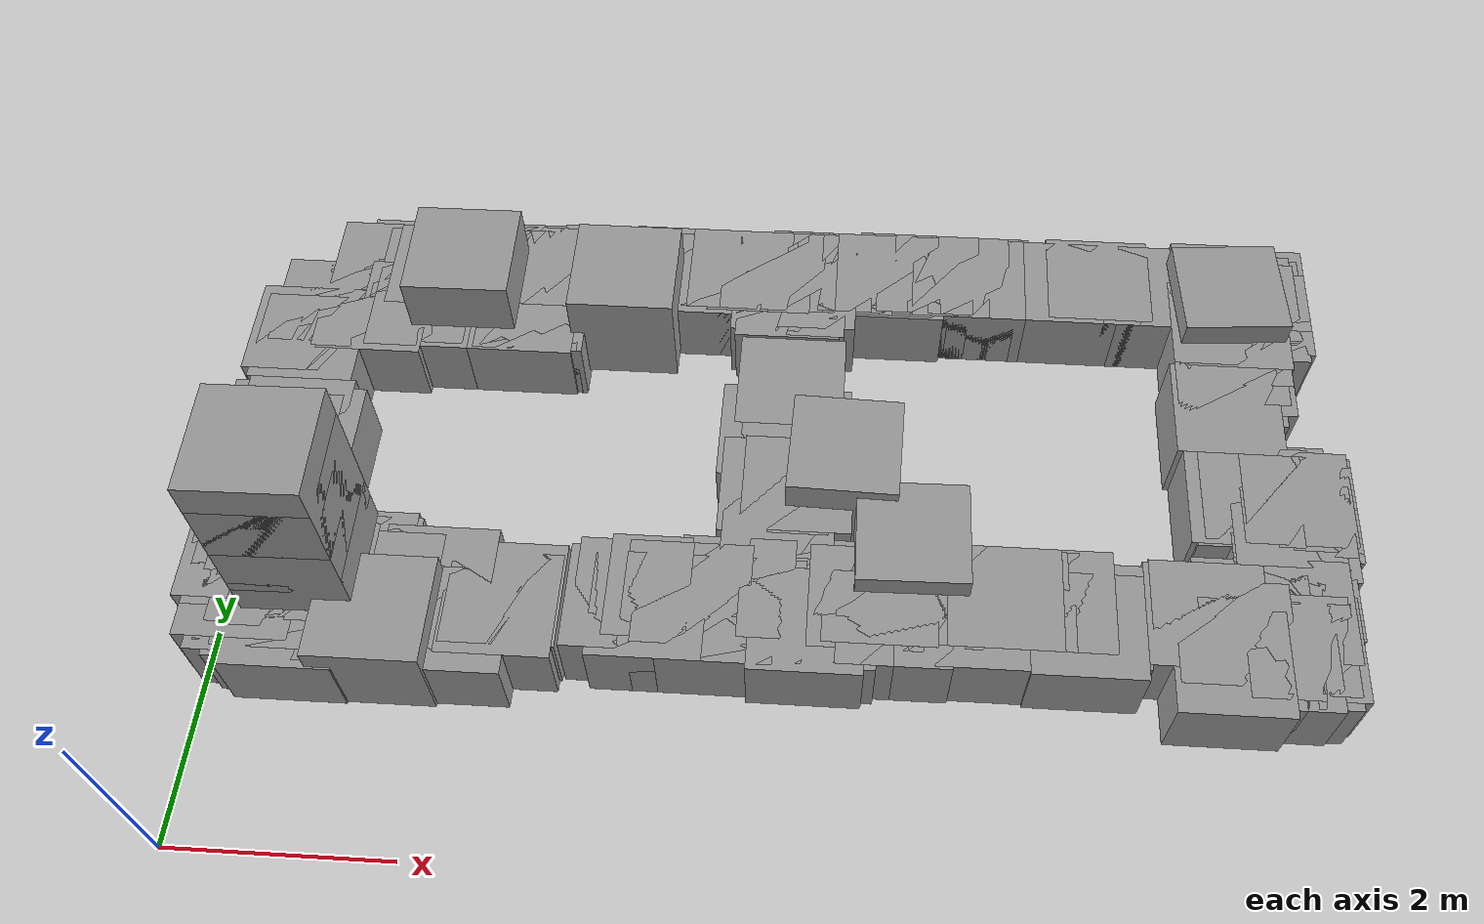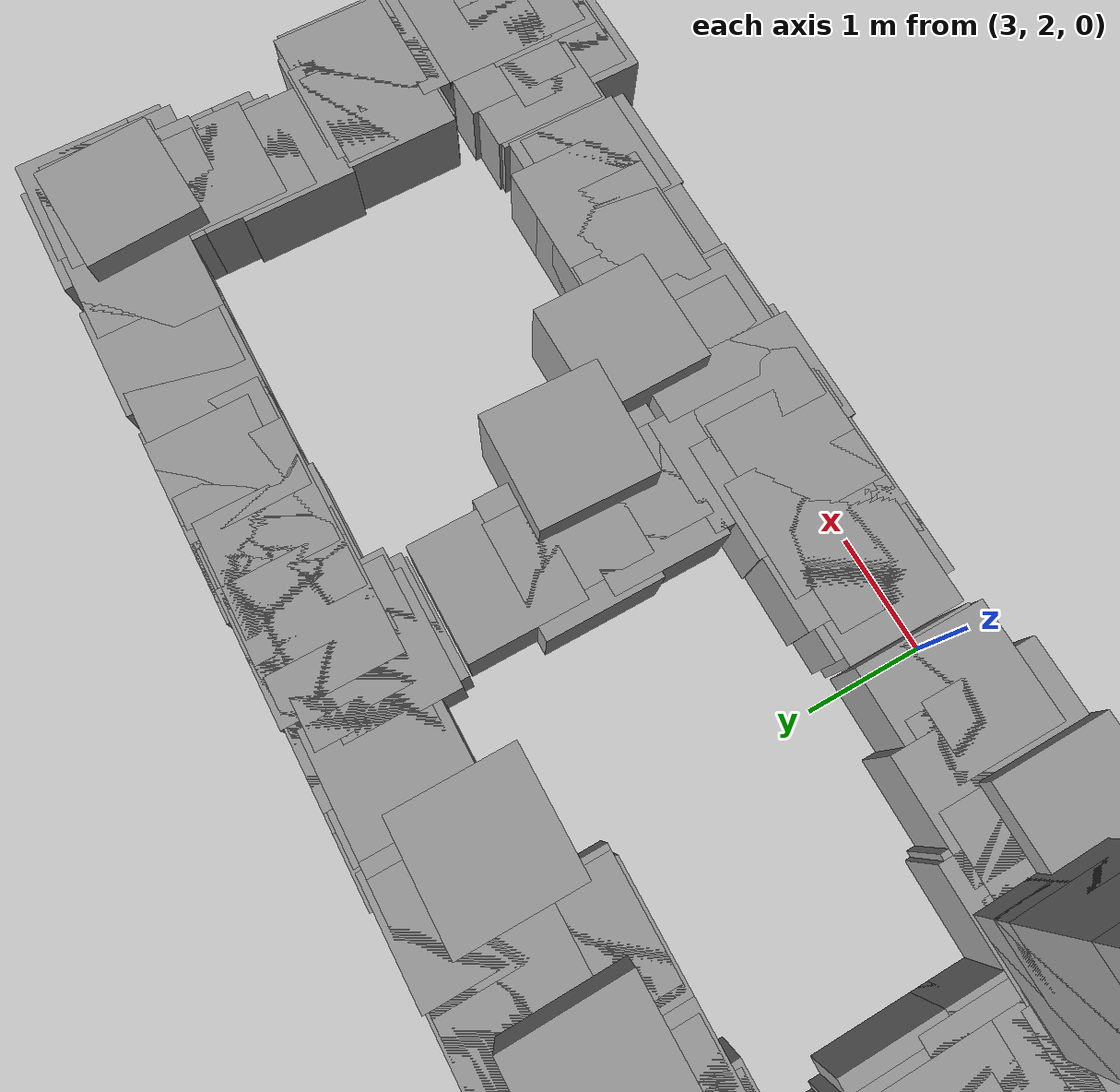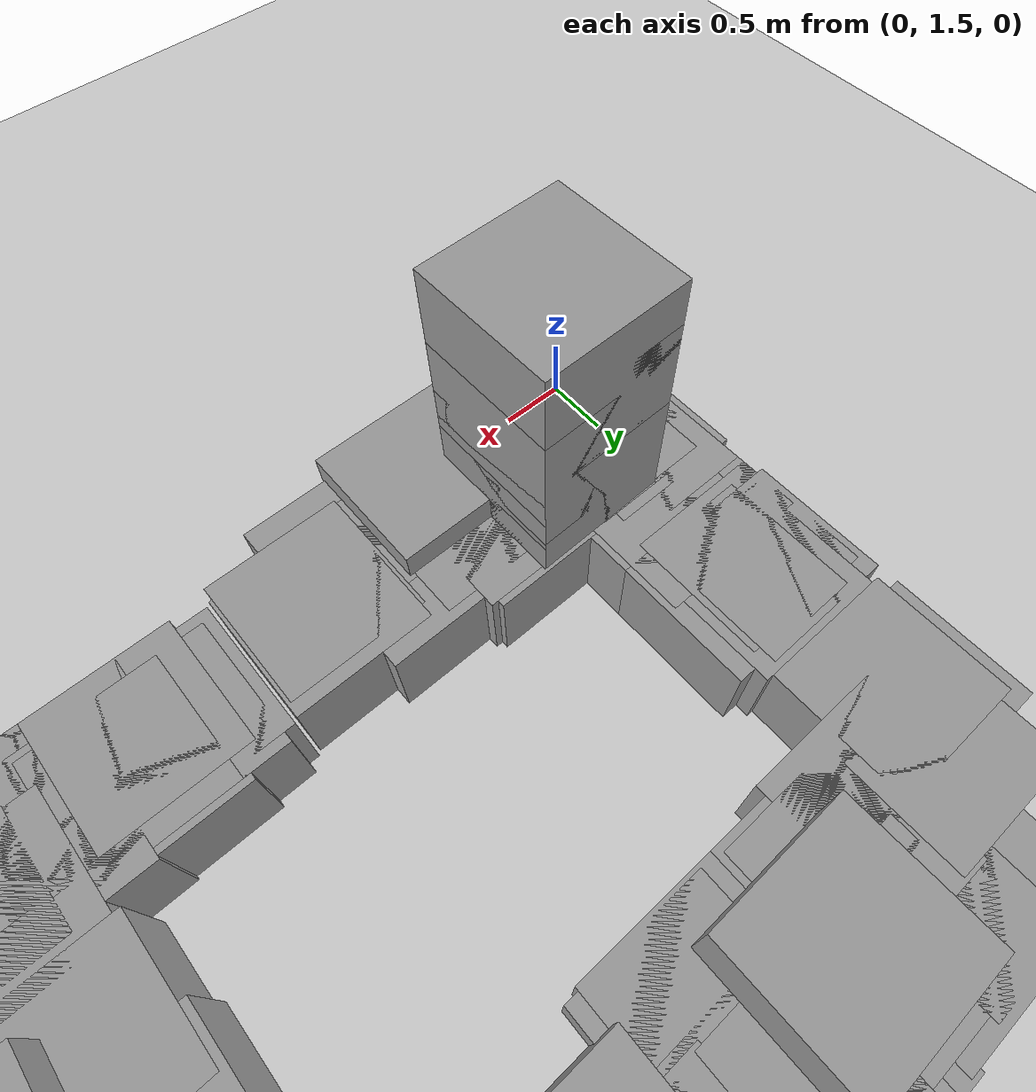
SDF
<sdf version="1.7">
 <world name="default">
  <model name="ground_plane">
   <static>1</static>
   <link name="link">
    <collision name="collision">
     <geometry><plane><normal>0 0 1</normal><size>100 100</size></plane></geometry>
     <surface>
      <contact><collide_bitmask>65535</collide_bitmask></contact>
      <friction><ode><mu>100</mu><mu2>50</mu2></ode></friction>
     </surface>
    </collision>
    <visual name="visual">
     <cast_shadows>0</cast_shadows>
     <geometry><plane><normal>0 0 1</normal><size>100 100</size></plane></geometry>
     <material>
      <script><uri>file://media/materials/scripts/gazebo.material</uri><name>Gazebo/Grey</name></script>
     </material>
    </visual>
   </link>
  </model>
  <include>
   <uri>model://unit_box</uri>
   <name>map_box_0</name>
   <pose>9.18219 6.09754 0.15000 0.00000 0.00000 0.00000</pose>
   <scale>0.50000 0.10000 0.30000</scale>
  </include>
  <include>
   <uri>model://unit_box</uri>
   <name>map_box_1</name>
   <pose>5.20719 6.02254 0.15000 0.00000 0.00000 0.00000</pose>
   <scale>0.05000 0.15000 0.30000</scale>
  </include>
  <include>
   <uri>model://unit_box</uri>
   <name>map_box_2</name>
   <pose>5.35719 6.02254 0.15000 0.00000 0.00000 0.00000</pose>
   <scale>0.05000 0.15000 0.30000</scale>
  </include>
  <include>
   <uri>model://unit_box</uri>
   <name>map_box_3</name>
   <pose>5.55719 6.02254 0.15000 0.00000 0.00000 0.00000</pose>
   <scale>0.25000 0.15000 0.30000</scale>
  </include>
  <include>
   <uri>model://unit_box</uri>
   <name>map_box_4</name>
   <pose>5.75719 6.02254 0.15000 0.00000 0.00000 0.00000</pose>
   <scale>0.05000 0.15000 0.30000</scale>
  </include>
  <include>
   <uri>model://unit_box</uri>
   <name>map_box_5</name>
   <pose>5.85719 6.02254 0.15000 0.00000 0.00000 0.00000</pose>
   <scale>0.05000 0.15000 0.30000</scale>
  </include>
  <include>
   <uri>model://unit_box</uri>
   <name>map_box_6</name>
   <pose>6.08219 6.04754 0.15000 0.00000 0.00000 0.00000</pose>
   <scale>0.10000 0.10000 0.30000</scale>
  </include>
  <include>
   <uri>model://unit_box</uri>
   <name>map_box_7</name>
   <pose>6.25719 6.04754 0.15000 0.00000 0.00000 0.00000</pose>
   <scale>0.15000 0.10000 0.30000</scale>
  </include>
  <include>
   <uri>model://unit_box</uri>
   <name>map_box_8</name>
   <pose>6.43219 6.04754 0.15000 0.00000 0.00000 0.00000</pose>
   <scale>0.10000 0.10000 0.30000</scale>
  </include>
  <include>
   <uri>model://unit_box</uri>
   <name>map_box_9</name>
   <pose>6.55719 6.04754 0.15000 0.00000 0.00000 0.00000</pose>
   <scale>0.05000 0.10000 0.30000</scale>
  </include>
  <include>
   <uri>model://unit_box</uri>
   <name>map_box_10</name>
   <pose>6.65719 6.04754 0.15000 0.00000 0.00000 0.00000</pose>
   <scale>0.05000 0.10000 0.30000</scale>
  </include>
  <include>
   <uri>model://unit_box</uri>
   <name>map_box_11</name>
   <pose>6.75719 6.04754 0.15000 0.00000 0.00000 0.00000</pose>
   <scale>0.05000 0.10000 0.30000</scale>
  </include>
  <include>
   <uri>model://unit_box</uri>
   <name>map_box_12</name>
   <pose>7.93219 6.07254 0.15000 0.00000 0.00000 0.00000</pose>
   <scale>2.00000 0.05000 0.30000</scale>
  </include>
  <include>
   <uri>model://unit_box</uri>
   <name>map_box_13</name>
   <pose>9.45719 6.04754 0.15000 0.00000 0.00000 0.00000</pose>
   <scale>0.05000 0.10000 0.30000</scale>
  </include>
  <include>
   <uri>model://unit_box</uri>
   <name>map_box_14</name>
   <pose>3.83219 5.99754 0.15000 0.00000 0.00000 0.00000</pose>
   <scale>0.10000 0.10000 0.30000</scale>
  </include>
  <include>
   <uri>model://unit_box</uri>
   <name>map_box_15</name>
   <pose>4.40719 5.99754 0.15000 0.00000 0.00000 0.00000</pose>
   <scale>0.05000 0.10000 0.30000</scale>
  </include>
  <include>
   <uri>model://unit_box</uri>
   <name>map_box_16</name>
   <pose>4.55719 5.99754 0.15000 0.00000 0.00000 0.00000</pose>
   <scale>0.05000 0.10000 0.30000</scale>
  </include>
  <include>
   <uri>model://unit_box</uri>
   <name>map_box_17</name>
   <pose>4.73219 5.99754 0.15000 0.00000 0.00000 0.00000</pose>
   <scale>0.20000 0.10000 0.30000</scale>
  </include>
  <include>
   <uri>model://unit_box</uri>
   <name>map_box_18</name>
   <pose>5.10719 5.99754 0.15000 0.00000 0.00000 0.00000</pose>
   <scale>0.15000 0.10000 0.30000</scale>
  </include>
  <include>
   <uri>model://unit_box</uri>
   <name>map_box_19</name>
   <pose>5.28219 5.99754 0.15000 0.00000 0.00000 0.00000</pose>
   <scale>0.10000 0.10000 0.30000</scale>
  </include>
  <include>
   <uri>model://unit_box</uri>
   <name>map_box_20</name>
   <pose>5.40719 5.99754 0.15000 0.00000 0.00000 0.00000</pose>
   <scale>0.05000 0.10000 0.30000</scale>
  </include>
  <include>
   <uri>model://unit_box</uri>
   <name>map_box_21</name>
   <pose>5.70719 5.99754 0.15000 0.00000 0.00000 0.00000</pose>
   <scale>0.05000 0.10000 0.30000</scale>
  </include>
  <include>
   <uri>model://unit_box</uri>
   <name>map_box_22</name>
   <pose>5.80719 5.99754 0.15000 0.00000 0.00000 0.00000</pose>
   <scale>0.05000 0.10000 0.30000</scale>
  </include>
  <include>
   <uri>model://unit_box</uri>
   <name>map_box_23</name>
   <pose>5.95719 6.02254 0.15000 0.00000 0.00000 0.00000</pose>
   <scale>0.15000 0.05000 0.30000</scale>
  </include>
  <include>
   <uri>model://unit_box</uri>
   <name>map_box_24</name>
   <pose>6.15719 6.02254 0.15000 0.00000 0.00000 0.00000</pose>
   <scale>0.05000 0.05000 0.30000</scale>
  </include>
  <include>
   <uri>model://unit_box</uri>
   <name>map_box_25</name>
   <pose>6.35719 6.02254 0.15000 0.00000 0.00000 0.00000</pose>
   <scale>0.05000 0.05000 0.30000</scale>
  </include>
  <include>
   <uri>model://unit_box</uri>
   <name>map_box_26</name>
   <pose>6.50719 6.02254 0.15000 0.00000 0.00000 0.00000</pose>
   <scale>0.05000 0.05000 0.30000</scale>
  </include>
  <include>
   <uri>model://unit_box</uri>
   <name>map_box_27</name>
   <pose>6.60719 6.02254 0.15000 0.00000 0.00000 0.00000</pose>
   <scale>0.05000 0.05000 0.30000</scale>
  </include>
  <include>
   <uri>model://unit_box</uri>
   <name>map_box_28</name>
   <pose>6.70719 6.02254 0.15000 0.00000 0.00000 0.00000</pose>
   <scale>0.05000 0.05000 0.30000</scale>
  </include>
  <include>
   <uri>model://unit_box</uri>
   <name>map_box_29</name>
   <pose>7.58219 6.02254 0.15000 0.00000 0.00000 0.00000</pose>
   <scale>1.60000 0.05000 0.30000</scale>
  </include>
  <include>
   <uri>model://unit_box</uri>
   <name>map_box_30</name>
   <pose>8.45719 6.02254 0.15000 0.00000 0.00000 0.00000</pose>
   <scale>0.05000 0.05000 0.30000</scale>
  </include>
  <include>
   <uri>model://unit_box</uri>
   <name>map_box_31</name>
   <pose>8.65719 6.02254 0.15000 0.00000 0.00000 0.00000</pose>
   <scale>0.25000 0.05000 0.30000</scale>
  </include>
  <include>
   <uri>model://unit_box</uri>
   <name>map_box_32</name>
   <pose>9.40719 5.92254 0.15000 0.00000 0.00000 0.00000</pose>
   <scale>0.05000 0.25000 0.30000</scale>
  </include>
  <include>
   <uri>model://unit_box</uri>
   <name>map_box_33</name>
   <pose>2.10719 5.94754 0.15000 0.00000 0.00000 0.00000</pose>
   <scale>0.25000 0.10000 0.30000</scale>
  </include>
  <include>
   <uri>model://unit_box</uri>
   <name>map_box_34</name>
   <pose>2.35719 5.92254 0.15000 0.00000 0.00000 0.00000</pose>
   <scale>0.05000 0.15000 0.30000</scale>
  </include>
  <include>
   <uri>model://unit_box</uri>
   <name>map_box_35</name>
   <pose>3.10719 5.97254 0.15000 0.00000 0.00000 0.00000</pose>
   <scale>1.35000 0.05000 0.30000</scale>
  </include>
  <include>
   <uri>model://unit_box</uri>
   <name>map_box_36</name>
   <pose>4.13219 5.97254 0.15000 0.00000 0.00000 0.00000</pose>
   <scale>0.50000 0.05000 0.30000</scale>
  </include>
  <include>
   <uri>model://unit_box</uri>
   <name>map_box_37</name>
   <pose>4.48219 5.97254 0.15000 0.00000 0.00000 0.00000</pose>
   <scale>0.10000 0.05000 0.30000</scale>
  </include>
  <include>
   <uri>model://unit_box</uri>
   <name>map_box_38</name>
   <pose>4.60719 5.97254 0.15000 0.00000 0.00000 0.00000</pose>
   <scale>0.05000 0.05000 0.30000</scale>
  </include>
  <include>
   <uri>model://unit_box</uri>
   <name>map_box_39</name>
   <pose>4.88219 5.92254 0.15000 0.00000 0.00000 0.00000</pose>
   <scale>0.10000 0.15000 0.30000</scale>
  </include>
  <include>
   <uri>model://unit_box</uri>
   <name>map_box_40</name>
   <pose>5.00719 5.82254 0.15000 0.00000 0.00000 0.00000</pose>
   <scale>0.05000 0.35000 0.30000</scale>
  </include>
  <include>
   <uri>model://unit_box</uri>
   <name>map_box_41</name>
   <pose>5.90719 5.97254 0.15000 0.00000 0.00000 0.00000</pose>
   <scale>0.05000 0.05000 0.30000</scale>
  </include>
  <include>
   <uri>model://unit_box</uri>
   <name>map_box_42</name>
   <pose>9.33219 5.97254 0.15000 0.00000 0.00000 0.00000</pose>
   <scale>0.10000 0.05000 0.30000</scale>
  </include>
  <include>
   <uri>model://unit_box</uri>
   <name>map_box_43</name>
   <pose>1.18219 5.92254 0.15000 0.00000 0.00000 0.00000</pose>
   <scale>1.60000 0.05000 0.30000</scale>
  </include>
  <include>
   <uri>model://unit_box</uri>
   <name>map_box_44</name>
   <pose>2.28219 5.92254 0.15000 0.00000 0.00000 0.00000</pose>
   <scale>0.10000 0.05000 0.30000</scale>
  </include>
  <include>
   <uri>model://unit_box</uri>
   <name>map_box_45</name>
   <pose>3.05719 5.92254 0.15000 0.00000 0.00000 0.00000</pose>
   <scale>1.35000 0.05000 0.30000</scale>
  </include>
  <include>
   <uri>model://unit_box</uri>
   <name>map_box_46</name>
   <pose>4.03219 5.92254 0.15000 0.00000 0.00000 0.00000</pose>
   <scale>0.10000 0.05000 0.30000</scale>
  </include>
  <include>
   <uri>model://unit_box</uri>
   <name>map_box_47</name>
   <pose>4.15719 5.92254 0.15000 0.00000 0.00000 0.00000</pose>
   <scale>0.05000 0.05000 0.30000</scale>
  </include>
  <include>
   <uri>model://unit_box</uri>
   <name>map_box_48</name>
   <pose>5.05719 5.79754 0.15000 0.00000 0.00000 0.00000</pose>
   <scale>0.05000 0.30000 0.30000</scale>
  </include>
  <include>
   <uri>model://unit_box</uri>
   <name>map_box_49</name>
   <pose>9.30719 5.89754 0.15000 0.00000 0.00000 0.00000</pose>
   <scale>0.05000 0.10000 0.30000</scale>
  </include>
  <include>
   <uri>model://unit_box</uri>
   <name>map_box_50</name>
   <pose>0.88219 5.87254 0.15000 0.00000 0.00000 0.00000</pose>
   <scale>1.00000 0.05000 0.30000</scale>
  </include>
  <include>
   <uri>model://unit_box</uri>
   <name>map_box_51</name>
   <pose>1.45719 5.87254 0.15000 0.00000 0.00000 0.00000</pose>
   <scale>0.05000 0.05000 0.30000</scale>
  </include>
  <include>
   <uri>model://unit_box</uri>
   <name>map_box_52</name>
   <pose>2.43219 5.87254 0.15000 0.00000 0.00000 0.00000</pose>
   <scale>0.10000 0.05000 0.30000</scale>
  </include>
  <include>
   <uri>model://unit_box</uri>
   <name>map_box_53</name>
   <pose>4.95719 5.87254 0.15000 0.00000 0.00000 0.00000</pose>
   <scale>0.05000 0.05000 0.30000</scale>
  </include>
  <include>
   <uri>model://unit_box</uri>
   <name>map_box_54</name>
   <pose>9.35719 5.87254 0.15000 0.00000 0.00000 0.00000</pose>
   <scale>0.05000 0.05000 0.30000</scale>
  </include>
  <include>
   <uri>model://unit_box</uri>
   <name>map_box_55</name>
   <pose>0.43219 5.34754 0.15000 0.00000 0.00000 0.00000</pose>
   <scale>0.10000 1.00000 0.30000</scale>
  </include>
  <include>
   <uri>model://unit_box</uri>
   <name>map_box_56</name>
   <pose>1.35719 5.82254 0.15000 0.00000 0.00000 0.00000</pose>
   <scale>0.05000 0.05000 0.30000</scale>
  </include>
  <include>
   <uri>model://unit_box</uri>
   <name>map_box_57</name>
   <pose>4.85719 5.74754 0.15000 0.00000 0.00000 0.00000</pose>
   <scale>0.05000 0.20000 0.30000</scale>
  </include>
  <include>
   <uri>model://unit_box</uri>
   <name>map_box_58</name>
   <pose>9.45719 5.74754 0.15000 0.00000 0.00000 0.00000</pose>
   <scale>0.05000 0.20000 0.30000</scale>
  </include>
  <include>
   <uri>model://unit_box</uri>
   <name>map_box_59</name>
   <pose>4.95719 5.69754 0.15000 0.00000 0.00000 0.00000</pose>
   <scale>0.05000 0.20000 0.30000</scale>
  </include>
  <include>
   <uri>model://unit_box</uri>
   <name>map_box_60</name>
   <pose>4.90719 5.67254 0.15000 0.00000 0.00000 0.00000</pose>
   <scale>0.05000 0.05000 0.30000</scale>
  </include>
  <include>
   <uri>model://unit_box</uri>
   <name>map_box_61</name>
   <pose>9.10719 5.59754 0.15000 0.00000 0.00000 0.00000</pose>
   <scale>0.05000 0.20000 0.30000</scale>
  </include>
  <include>
   <uri>model://unit_box</uri>
   <name>map_box_62</name>
   <pose>9.40719 5.67254 0.15000 0.00000 0.00000 0.00000</pose>
   <scale>0.05000 0.05000 0.30000</scale>
  </include>
  <include>
   <uri>model://unit_box</uri>
   <name>map_box_63</name>
   <pose>9.05719 4.57254 0.15000 0.00000 0.00000 0.00000</pose>
   <scale>0.05000 2.05000 0.30000</scale>
  </include>
  <include>
   <uri>model://unit_box</uri>
   <name>map_box_64</name>
   <pose>9.23219 5.57254 0.15000 0.00000 0.00000 0.00000</pose>
   <scale>0.10000 0.05000 0.30000</scale>
  </include>
  <include>
   <uri>model://unit_box</uri>
   <name>map_box_65</name>
   <pose>9.20719 5.37254 0.15000 0.00000 0.00000 0.00000</pose>
   <scale>0.05000 0.35000 0.30000</scale>
  </include>
  <include>
   <uri>model://unit_box</uri>
   <name>map_box_66</name>
   <pose>1.30719 5.39754 0.15000 0.00000 0.00000 0.00000</pose>
   <scale>0.05000 0.10000 0.30000</scale>
  </include>
  <include>
   <uri>model://unit_box</uri>
   <name>map_box_67</name>
   <pose>2.40719 5.37254 0.15000 0.00000 0.00000 0.00000</pose>
   <scale>0.05000 0.15000 0.30000</scale>
  </include>
  <include>
   <uri>model://unit_box</uri>
   <name>map_box_68</name>
   <pose>9.10719 4.89754 0.15000 0.00000 0.00000 0.00000</pose>
   <scale>0.05000 1.10000 0.30000</scale>
  </include>
  <include>
   <uri>model://unit_box</uri>
   <name>map_box_69</name>
   <pose>1.25719 5.37254 0.15000 0.00000 0.00000 0.00000</pose>
   <scale>0.05000 0.05000 0.30000</scale>
  </include>
  <include>
   <uri>model://unit_box</uri>
   <name>map_box_70</name>
   <pose>1.35719 5.34754 0.15000 0.00000 0.00000 0.00000</pose>
   <scale>0.05000 0.10000 0.30000</scale>
  </include>
  <include>
   <uri>model://unit_box</uri>
   <name>map_box_71</name>
   <pose>2.35719 5.34754 0.15000 0.00000 0.00000 0.00000</pose>
   <scale>0.05000 0.10000 0.30000</scale>
  </include>
  <include>
   <uri>model://unit_box</uri>
   <name>map_box_72</name>
   <pose>2.45719 5.37254 0.15000 0.00000 0.00000 0.00000</pose>
   <scale>0.05000 0.05000 0.30000</scale>
  </include>
  <include>
   <uri>model://unit_box</uri>
   <name>map_box_73</name>
   <pose>0.85719 5.29754 0.15000 0.00000 0.00000 0.00000</pose>
   <scale>0.05000 0.10000 0.30000</scale>
  </include>
  <include>
   <uri>model://unit_box</uri>
   <name>map_box_74</name>
   <pose>0.90719 5.27254 0.15000 0.00000 0.00000 0.00000</pose>
   <scale>0.05000 0.05000 0.30000</scale>
  </include>
  <include>
   <uri>model://unit_box</uri>
   <name>map_box_75</name>
   <pose>9.15719 5.14754 0.15000 0.00000 0.00000 0.00000</pose>
   <scale>0.05000 0.10000 0.30000</scale>
  </include>
  <include>
   <uri>model://unit_box</uri>
   <name>map_box_76</name>
   <pose>0.25719 4.99754 0.15000 0.00000 0.00000 0.00000</pose>
   <scale>0.05000 0.30000 0.30000</scale>
  </include>
  <include>
   <uri>model://unit_box</uri>
   <name>map_box_77</name>
   <pose>9.20719 5.02254 0.15000 0.00000 0.00000 0.00000</pose>
   <scale>0.05000 0.25000 0.30000</scale>
  </include>
  <include>
   <uri>model://unit_box</uri>
   <name>map_box_78</name>
   <pose>0.33219 4.89754 0.15000 0.00000 0.00000 0.00000</pose>
   <scale>0.10000 0.10000 0.30000</scale>
  </include>
  <include>
   <uri>model://unit_box</uri>
   <name>map_box_79</name>
   <pose>4.98219 4.64754 0.15000 0.00000 0.00000 0.00000</pose>
   <scale>0.20000 0.10000 0.30000</scale>
  </include>
  <include>
   <uri>model://unit_box</uri>
   <name>map_box_80</name>
   <pose>4.85719 4.07254 0.15000 0.00000 0.00000 0.00000</pose>
   <scale>0.05000 1.15000 0.30000</scale>
  </include>
  <include>
   <uri>model://unit_box</uri>
   <name>map_box_81</name>
   <pose>5.10719 3.49754 0.15000 0.00000 0.00000 0.00000</pose>
   <scale>0.05000 2.30000 0.30000</scale>
  </include>
  <include>
   <uri>model://unit_box</uri>
   <name>map_box_82</name>
   <pose>4.90719 3.47254 0.15000 0.00000 0.00000 0.00000</pose>
   <scale>0.05000 2.25000 0.30000</scale>
  </include>
  <include>
   <uri>model://unit_box</uri>
   <name>map_box_83</name>
   <pose>5.05719 4.04754 0.15000 0.00000 0.00000 0.00000</pose>
   <scale>0.05000 1.10000 0.30000</scale>
  </include>
  <include>
   <uri>model://unit_box</uri>
   <name>map_box_84</name>
   <pose>0.38219 3.89754 0.15000 0.00000 0.00000 0.00000</pose>
   <scale>0.20000 0.10000 0.30000</scale>
  </include>
  <include>
   <uri>model://unit_box</uri>
   <name>map_box_85</name>
   <pose>0.25719 3.84754 0.15000 0.00000 0.00000 0.00000</pose>
   <scale>0.05000 0.10000 0.30000</scale>
  </include>
  <include>
   <uri>model://unit_box</uri>
   <name>map_box_86</name>
   <pose>0.50719 3.79754 0.15000 0.00000 0.00000 0.00000</pose>
   <scale>0.05000 0.20000 0.30000</scale>
  </include>
  <include>
   <uri>model://unit_box</uri>
   <name>map_box_87</name>
   <pose>0.30719 3.72254 0.15000 0.00000 0.00000 0.00000</pose>
   <scale>0.05000 0.25000 0.30000</scale>
  </include>
  <include>
   <uri>model://unit_box</uri>
   <name>map_box_88</name>
   <pose>0.45719 3.19754 0.15000 0.00000 0.00000 0.00000</pose>
   <scale>0.05000 1.30000 0.30000</scale>
  </include>
  <include>
   <uri>model://unit_box</uri>
   <name>map_box_89</name>
   <pose>9.48219 3.39754 0.15000 0.00000 0.00000 0.00000</pose>
   <scale>0.10000 0.80000 0.30000</scale>
  </include>
  <include>
   <uri>model://unit_box</uri>
   <name>map_box_90</name>
   <pose>9.38219 3.67254 0.15000 0.00000 0.00000 0.00000</pose>
   <scale>0.10000 0.15000 0.30000</scale>
  </include>
  <include>
   <uri>model://unit_box</uri>
   <name>map_box_91</name>
   <pose>9.23219 3.64754 0.15000 0.00000 0.00000 0.00000</pose>
   <scale>0.20000 0.10000 0.30000</scale>
  </include>
  <include>
   <uri>model://unit_box</uri>
   <name>map_box_92</name>
   <pose>0.50719 2.94754 0.15000 0.00000 0.00000 0.00000</pose>
   <scale>0.05000 1.40000 0.30000</scale>
  </include>
  <include>
   <uri>model://unit_box</uri>
   <name>map_box_93</name>
   <pose>9.10719 3.59754 0.15000 0.00000 0.00000 0.00000</pose>
   <scale>0.05000 0.10000 0.30000</scale>
  </include>
  <include>
   <uri>model://unit_box</uri>
   <name>map_box_94</name>
   <pose>9.58219 3.62254 0.15000 0.00000 0.00000 0.00000</pose>
   <scale>0.10000 0.05000 0.30000</scale>
  </include>
  <include>
   <uri>model://unit_box</uri>
   <name>map_box_95</name>
   <pose>9.15719 3.57254 0.15000 0.00000 0.00000 0.00000</pose>
   <scale>0.05000 0.05000 0.30000</scale>
  </include>
  <include>
   <uri>model://unit_box</uri>
   <name>map_box_96</name>
   <pose>9.60719 3.57254 0.15000 0.00000 0.00000 0.00000</pose>
   <scale>0.05000 0.05000 0.30000</scale>
  </include>
  <include>
   <uri>model://unit_box</uri>
   <name>map_box_97</name>
   <pose>0.30719 3.17254 0.15000 0.00000 0.00000 0.00000</pose>
   <scale>0.05000 0.75000 0.30000</scale>
  </include>
  <include>
   <uri>model://unit_box</uri>
   <name>map_box_98</name>
   <pose>9.55719 3.52254 0.15000 0.00000 0.00000 0.00000</pose>
   <scale>0.05000 0.05000 0.30000</scale>
  </include>
  <include>
   <uri>model://unit_box</uri>
   <name>map_box_99</name>
   <pose>9.60719 3.47254 0.15000 0.00000 0.00000 0.00000</pose>
   <scale>0.05000 0.05000 0.30000</scale>
  </include>
  <include>
   <uri>model://unit_box</uri>
   <name>map_box_100</name>
   <pose>9.55719 3.27254 0.15000 0.00000 0.00000 0.00000</pose>
   <scale>0.05000 0.35000 0.30000</scale>
  </include>
  <include>
   <uri>model://unit_box</uri>
   <name>map_box_101</name>
   <pose>4.95719 3.22254 0.15000 0.00000 0.00000 0.00000</pose>
   <scale>0.05000 0.05000 0.30000</scale>
  </include>
  <include>
   <uri>model://unit_box</uri>
   <name>map_box_102</name>
   <pose>9.50719 2.69754 0.15000 0.00000 0.00000 0.00000</pose>
   <scale>0.05000 0.60000 0.30000</scale>
  </include>
  <include>
   <uri>model://unit_box</uri>
   <name>map_box_103</name>
   <pose>0.30719 2.67254 0.15000 0.00000 0.00000 0.00000</pose>
   <scale>0.05000 0.15000 0.30000</scale>
  </include>
  <include>
   <uri>model://unit_box</uri>
   <name>map_box_104</name>
   <pose>4.95719 2.57254 0.15000 0.00000 0.00000 0.00000</pose>
   <scale>0.05000 0.35000 0.30000</scale>
  </include>
  <include>
   <uri>model://unit_box</uri>
   <name>map_box_105</name>
   <pose>9.45719 2.72254 0.15000 0.00000 0.00000 0.00000</pose>
   <scale>0.05000 0.05000 0.30000</scale>
  </include>
  <include>
   <uri>model://unit_box</uri>
   <name>map_box_106</name>
   <pose>0.35719 2.44754 0.15000 0.00000 0.00000 0.00000</pose>
   <scale>0.05000 0.40000 0.30000</scale>
  </include>
  <include>
   <uri>model://unit_box</uri>
   <name>map_box_107</name>
   <pose>1.25719 2.47254 0.15000 0.00000 0.00000 0.00000</pose>
   <scale>0.05000 0.35000 0.30000</scale>
  </include>
  <include>
   <uri>model://unit_box</uri>
   <name>map_box_108</name>
   <pose>1.30719 2.42254 0.15000 0.00000 0.00000 0.00000</pose>
   <scale>0.05000 0.35000 0.30000</scale>
  </include>
  <include>
   <uri>model://unit_box</uri>
   <name>map_box_109</name>
   <pose>0.25719 2.52254 0.15000 0.00000 0.00000 0.00000</pose>
   <scale>0.05000 0.05000 0.30000</scale>
  </include>
  <include>
   <uri>model://unit_box</uri>
   <name>map_box_110</name>
   <pose>8.70719 2.39754 0.15000 0.00000 0.00000 0.00000</pose>
   <scale>0.05000 0.30000 0.30000</scale>
  </include>
  <include>
   <uri>model://unit_box</uri>
   <name>map_box_111</name>
   <pose>9.45719 2.47254 0.15000 0.00000 0.00000 0.00000</pose>
   <scale>0.05000 0.15000 0.30000</scale>
  </include>
  <include>
   <uri>model://unit_box</uri>
   <name>map_box_112</name>
   <pose>0.45719 2.42254 0.15000 0.00000 0.00000 0.00000</pose>
   <scale>0.05000 0.15000 0.30000</scale>
  </include>
  <include>
   <uri>model://unit_box</uri>
   <name>map_box_113</name>
   <pose>5.15719 2.42254 0.15000 0.00000 0.00000 0.00000</pose>
   <scale>0.05000 0.15000 0.30000</scale>
  </include>
  <include>
   <uri>model://unit_box</uri>
   <name>map_box_114</name>
   <pose>6.68219 2.44754 0.15000 0.00000 0.00000 0.00000</pose>
   <scale>0.20000 0.10000 0.30000</scale>
  </include>
  <include>
   <uri>model://unit_box</uri>
   <name>map_box_115</name>
   <pose>6.85719 2.44754 0.15000 0.00000 0.00000 0.00000</pose>
   <scale>0.05000 0.10000 0.30000</scale>
  </include>
  <include>
   <uri>model://unit_box</uri>
   <name>map_box_116</name>
   <pose>6.95719 2.44754 0.15000 0.00000 0.00000 0.00000</pose>
   <scale>0.05000 0.10000 0.30000</scale>
  </include>
  <include>
   <uri>model://unit_box</uri>
   <name>map_box_117</name>
   <pose>7.05719 2.44754 0.15000 0.00000 0.00000 0.00000</pose>
   <scale>0.05000 0.10000 0.30000</scale>
  </include>
  <include>
   <uri>model://unit_box</uri>
   <name>map_box_118</name>
   <pose>7.40719 2.44754 0.15000 0.00000 0.00000 0.00000</pose>
   <scale>0.55000 0.10000 0.30000</scale>
  </include>
  <include>
   <uri>model://unit_box</uri>
   <name>map_box_119</name>
   <pose>8.65719 2.37254 0.15000 0.00000 0.00000 0.00000</pose>
   <scale>0.05000 0.25000 0.30000</scale>
  </include>
  <include>
   <uri>model://unit_box</uri>
   <name>map_box_120</name>
   <pose>9.08219 2.44754 0.15000 0.00000 0.00000 0.00000</pose>
   <scale>0.70000 0.10000 0.30000</scale>
  </include>
  <include>
   <uri>model://unit_box</uri>
   <name>map_box_121</name>
   <pose>4.63219 2.39754 0.15000 0.00000 0.00000 0.00000</pose>
   <scale>0.50000 0.10000 0.30000</scale>
  </include>
  <include>
   <uri>model://unit_box</uri>
   <name>map_box_122</name>
   <pose>5.88219 2.42254 0.15000 0.00000 0.00000 0.00000</pose>
   <scale>1.40000 0.05000 0.30000</scale>
  </include>
  <include>
   <uri>model://unit_box</uri>
   <name>map_box_123</name>
   <pose>6.80719 2.42254 0.15000 0.00000 0.00000 0.00000</pose>
   <scale>0.05000 0.05000 0.30000</scale>
  </include>
  <include>
   <uri>model://unit_box</uri>
   <name>map_box_124</name>
   <pose>6.90719 2.42254 0.15000 0.00000 0.00000 0.00000</pose>
   <scale>0.05000 0.05000 0.30000</scale>
  </include>
  <include>
   <uri>model://unit_box</uri>
   <name>map_box_125</name>
   <pose>7.00719 2.42254 0.15000 0.00000 0.00000 0.00000</pose>
   <scale>0.05000 0.05000 0.30000</scale>
  </include>
  <include>
   <uri>model://unit_box</uri>
   <name>map_box_126</name>
   <pose>7.10719 2.42254 0.15000 0.00000 0.00000 0.00000</pose>
   <scale>0.05000 0.05000 0.30000</scale>
  </include>
  <include>
   <uri>model://unit_box</uri>
   <name>map_box_127</name>
   <pose>0.55719 2.32254 0.15000 0.00000 0.00000 0.00000</pose>
   <scale>0.05000 0.15000 0.30000</scale>
  </include>
  <include>
   <uri>model://unit_box</uri>
   <name>map_box_128</name>
   <pose>0.93219 2.34754 0.15000 0.00000 0.00000 0.00000</pose>
   <scale>0.60000 0.10000 0.30000</scale>
  </include>
  <include>
   <uri>model://unit_box</uri>
   <name>map_box_129</name>
   <pose>2.00719 2.34754 0.15000 0.00000 0.00000 0.00000</pose>
   <scale>1.35000 0.10000 0.30000</scale>
  </include>
  <include>
   <uri>model://unit_box</uri>
   <name>map_box_130</name>
   <pose>4.00719 2.37254 0.15000 0.00000 0.00000 0.00000</pose>
   <scale>0.75000 0.05000 0.30000</scale>
  </include>
  <include>
   <uri>model://unit_box</uri>
   <name>map_box_131</name>
   <pose>5.75719 2.37254 0.15000 0.00000 0.00000 0.00000</pose>
   <scale>1.15000 0.05000 0.30000</scale>
  </include>
  <include>
   <uri>model://unit_box</uri>
   <name>map_box_132</name>
   <pose>7.68219 2.32254 0.15000 0.00000 0.00000 0.00000</pose>
   <scale>0.10000 0.15000 0.30000</scale>
  </include>
  <include>
   <uri>model://unit_box</uri>
   <name>map_box_133</name>
   <pose>0.60719 2.29754 0.15000 0.00000 0.00000 0.00000</pose>
   <scale>0.05000 0.10000 0.30000</scale>
  </include>
  <include>
   <uri>model://unit_box</uri>
   <name>map_box_134</name>
   <pose>3.73219 2.32254 0.15000 0.00000 0.00000 0.00000</pose>
   <scale>0.30000 0.05000 0.30000</scale>
  </include>
  <include>
   <uri>model://unit_box</uri>
   <name>map_box_135</name>
   <pose>4.05719 2.32254 0.15000 0.00000 0.00000 0.00000</pose>
   <scale>0.25000 0.05000 0.30000</scale>
  </include>
  <include>
   <uri>model://unit_box</uri>
   <name>map_box_136</name>
   <pose>4.25719 2.32254 0.15000 0.00000 0.00000 0.00000</pose>
   <scale>0.05000 0.05000 0.30000</scale>
  </include>
  <include>
   <uri>model://unit_box</uri>
   <name>map_box_137</name>
   <pose>9.13219 2.29754 0.15000 0.00000 0.00000 0.00000</pose>
   <scale>0.80000 0.10000 0.30000</scale>
  </include>
  <include>
   <uri>model://unit_box</uri>
   <name>map_box_138</name>
   <pose>0.75719 2.27254 0.15000 0.00000 0.00000 0.00000</pose>
   <scale>0.25000 0.05000 0.30000</scale>
  </include>
  <include>
   <uri>model://unit_box</uri>
   <name>map_box_139</name>
   <pose>1.53219 2.27254 0.15000 0.00000 0.00000 0.00000</pose>
   <scale>0.40000 0.05000 0.30000</scale>
  </include>
  <include>
   <uri>model://unit_box</uri>
   <name>map_box_140</name>
   <pose>2.63219 2.22254 0.15000 0.00000 0.00000 0.00000</pose>
   <scale>0.10000 0.15000 0.30000</scale>
  </include>
  <include>
   <uri>model://unit_box</uri>
   <name>map_box_141</name>
   <pose>3.65719 2.24754 0.15000 0.00000 0.00000 0.00000</pose>
   <scale>0.15000 0.10000 0.30000</scale>
  </include>
  <include>
   <uri>model://unit_box</uri>
   <name>map_box_142</name>
   <pose>5.95719 2.24754 0.15000 0.00000 0.00000 0.00000</pose>
   <scale>0.05000 0.10000 0.30000</scale>
  </include>
  <include>
   <uri>model://unit_box</uri>
   <name>map_box_143</name>
   <pose>6.83219 2.24754 0.15000 0.00000 0.00000 0.00000</pose>
   <scale>1.60000 0.10000 0.30000</scale>
  </include>
  <include>
   <uri>model://unit_box</uri>
   <name>map_box_144</name>
   <pose>4.15719 2.19754 0.15000 0.00000 0.00000 0.00000</pose>
   <scale>0.05000 0.10000 0.30000</scale>
  </include>
  <include>
   <uri>model://unit_box</uri>
   <name>map_box_145</name>
   <pose>4.38219 2.19754 0.15000 0.00000 0.00000 0.00000</pose>
   <scale>0.10000 0.10000 0.30000</scale>
  </include>
  <include>
   <uri>model://unit_box</uri>
   <name>map_box_146</name>
   <pose>4.73219 2.19754 0.15000 0.00000 0.00000 0.00000</pose>
   <scale>0.40000 0.10000 0.30000</scale>
  </include>
  <include>
   <uri>model://unit_box</uri>
   <name>map_box_147</name>
   <pose>5.50719 2.22254 0.15000 0.00000 0.00000 0.00000</pose>
   <scale>0.85000 0.05000 0.30000</scale>
  </include>
  <include>
   <uri>model://unit_box</uri>
   <name>map_box_148</name>
   <pose>6.00719 2.22254 0.15000 0.00000 0.00000 0.00000</pose>
   <scale>0.05000 0.05000 0.30000</scale>
  </include>
  <include>
   <uri>model://unit_box</uri>
   <name>map_box_149</name>
   <pose>7.65719 2.22254 0.15000 0.00000 0.00000 0.00000</pose>
   <scale>0.05000 0.05000 0.30000</scale>
  </include>
  <include>
   <uri>model://unit_box</uri>
   <name>map_box_150</name>
   <pose>8.90719 2.22254 0.15000 0.00000 0.00000 0.00000</pose>
   <scale>0.05000 0.05000 0.30000</scale>
  </include>
  <include>
   <uri>model://unit_box</uri>
   <name>map_box_151</name>
   <pose>9.20719 2.22254 0.15000 0.00000 0.00000 0.00000</pose>
   <scale>0.05000 0.05000 0.30000</scale>
  </include>
  <include>
   <uri>model://unit_box</uri>
   <name>map_box_152</name>
   <pose>9.48219 2.12254 0.15000 0.00000 0.00000 0.00000</pose>
   <scale>0.10000 0.25000 0.30000</scale>
  </include>
  <include>
   <uri>model://unit_box</uri>
   <name>map_box_153</name>
   <pose>0.35719 2.14754 0.15000 0.00000 0.00000 0.00000</pose>
   <scale>0.05000 0.10000 0.30000</scale>
  </include>
  <include>
   <uri>model://unit_box</uri>
   <name>map_box_154</name>
   <pose>2.38219 2.14754 0.15000 0.00000 0.00000 0.00000</pose>
   <scale>0.40000 0.10000 0.30000</scale>
  </include>
  <include>
   <uri>model://unit_box</uri>
   <name>map_box_155</name>
   <pose>3.88219 2.17254 0.15000 0.00000 0.00000 0.00000</pose>
   <scale>0.50000 0.05000 0.30000</scale>
  </include>
  <include>
   <uri>model://unit_box</uri>
   <name>map_box_156</name>
   <pose>4.25719 2.17254 0.15000 0.00000 0.00000 0.00000</pose>
   <scale>0.15000 0.05000 0.30000</scale>
  </include>
  <include>
   <uri>model://unit_box</uri>
   <name>map_box_157</name>
   <pose>4.48219 2.17254 0.15000 0.00000 0.00000 0.00000</pose>
   <scale>0.10000 0.05000 0.30000</scale>
  </include>
  <include>
   <uri>model://unit_box</uri>
   <name>map_box_160</name>
   <pose>5.35719 2.17254 0.15000 0.00000 0.00000 0.00000</pose>
   <scale>0.15000 0.05000 0.30000</scale>
  </include>
  <include>
   <uri>model://unit_box</uri>
   <name>map_box_161</name>
   <pose>9.40719 2.17254 0.15000 0.00000 0.00000 0.00000</pose>
   <scale>0.05000 0.05000 0.30000</scale>
  </include>
  <include>
   <uri>model://unit_box</uri>
   <name>map_box_162</name>
   <pose>0.55719 2.09754 0.15000 0.00000 0.00000 0.00000</pose>
   <scale>0.25000 0.10000 0.30000</scale>
  </include>
  <include>
   <uri>model://unit_box</uri>
   <name>map_box_163</name>
   <pose>0.78219 2.09754 0.15000 0.00000 0.00000 0.00000</pose>
   <scale>0.10000 0.10000 0.30000</scale>
  </include>
  <include>
   <uri>model://unit_box</uri>
   <name>map_box_164</name>
   <pose>2.15719 2.12254 0.15000 0.00000 0.00000 0.00000</pose>
   <scale>0.05000 0.05000 0.30000</scale>
  </include>
  <include>
   <uri>model://unit_box</uri>
   <name>map_box_165</name>
   <pose>2.60719 2.12254 0.15000 0.00000 0.00000 0.00000</pose>
   <scale>0.05000 0.05000 0.30000</scale>
  </include>
  <include>
   <uri>model://unit_box</uri>
   <name>map_box_167</name>
   <pose>5.25719 2.12254 0.15000 0.00000 0.00000 0.00000</pose>
   <scale>0.25000 0.05000 0.30000</scale>
  </include>
  <include>
   <uri>model://unit_box</uri>
   <name>map_box_168</name>
   <pose>0.70719 2.07254 0.15000 0.00000 0.00000 0.00000</pose>
   <scale>0.05000 0.05000 0.30000</scale>
  </include>
  <include>
   <uri>model://unit_box</uri>
   <name>map_box_169</name>
   <pose>0.85719 1.99754 0.15000 0.00000 0.00000 0.00000</pose>
   <scale>0.05000 0.20000 0.30000</scale>
  </include>
  <include>
   <uri>model://unit_box</uri>
   <name>map_box_170</name>
   <pose>2.20719 1.94754 0.15000 0.00000 0.00000 0.00000</pose>
   <scale>0.05000 0.30000 0.30000</scale>
  </include>
  <include>
   <uri>model://unit_box</uri>
   <name>map_box_172</name>
   <pose>9.10719 2.04754 0.15000 0.00000 0.00000 0.00000</pose>
   <scale>0.05000 0.10000 0.30000</scale>
  </include>
  <include>
   <uri>model://unit_box</uri>
   <name>map_box_173</name>
   <pose>9.40719 2.04754 0.15000 0.00000 0.00000 0.00000</pose>
   <scale>0.05000 0.10000 0.30000</scale>
  </include>
  <include>
   <uri>model://unit_box</uri>
   <name>map_box_174</name>
   <pose>0.48219 2.02254 0.15000 0.00000 0.00000 0.00000</pose>
   <scale>0.10000 0.05000 0.30000</scale>
  </include>
  <include>
   <uri>model://unit_box</uri>
   <name>map_box_175</name>
   <pose>8.93219 2.02254 0.15000 0.00000 0.00000 0.00000</pose>
   <scale>0.30000 0.05000 0.30000</scale>
  </include>
  <include>
   <uri>model://unit_box</uri>
   <name>map_box_176</name>
   <pose>9.25719 2.02254 0.15000 0.00000 0.00000 0.00000</pose>
   <scale>0.25000 0.05000 0.30000</scale>
  </include>
  <include>
   <uri>model://unit_box</uri>
   <name>map_box_179</name>
   <pose>0.65719 1.97254 0.15000 0.00000 0.00000 0.00000</pose>
   <scale>0.05000 0.05000 0.30000</scale>
  </include>
  <include>
   <uri>model://unit_box</uri>
   <name>map_box_180</name>
   <pose>8.85719 1.94754 0.15000 0.00000 0.00000 0.00000</pose>
   <scale>0.15000 0.10000 0.30000</scale>
  </include>
  <include>
   <uri>model://unit_box</uri>
   <name>map_box_182</name>
   <pose>0.78219 1.89754 0.15000 0.00000 0.00000 0.00000</pose>
   <scale>0.10000 0.10000 0.30000</scale>
  </include>
  <include>
   <uri>model://unit_box</uri>
   <name>laundry_table</name>
   <pose>1.77750 5.60500 0.71000 0.00000 0.00000 0.00870</pose>
   <scale>1.15004 0.49010 0.04000</scale>
  </include>
  <include>
   <uri>model://unit_box</uri>
   <name>washing_machine</name>
   <pose>3.33000 5.59750 0.58000 0.00000 0.00000 3.14159</pose>
   <scale>0.56000 0.62008 0.52000</scale>
  </include>
  <include>
   <uri>model://unit_box</uri>
   <name>shelf_0</name>
   <pose>0.89250 2.44250 0.05000 0.00000 0.00000 -3.12826</pose>
   <scale>0.75007 0.28018 0.10000</scale>
  </include>
  <include>
   <uri>model://unit_box</uri>
   <name>shelf_1</name>
   <pose>0.89250 2.44250 0.40500 0.00000 0.00000 -3.12826</pose>
   <scale>0.75007 0.28018 0.03000</scale>
  </include>
  <include>
   <uri>model://unit_box</uri>
   <name>shelf_2</name>
   <pose>0.89250 2.44250 0.69500 0.00000 0.00000 -3.12826</pose>
   <scale>0.75007 0.28018 0.03000</scale>
  </include>
  <include>
   <uri>model://unit_box</uri>
   <name>shelf_3</name>
   <pose>0.89250 2.44250 1.04500 0.00000 0.00000 -3.12826</pose>
   <scale>0.75007 0.28018 0.03000</scale>
  </include>
  <include>
   <uri>model://unit_box</uri>
   <name>shelf_4</name>
   <pose>0.89250 2.44250 1.46500 0.00000 0.00000 -3.12826</pose>
   <scale>0.75007 0.28018 0.03000</scale>
  </include>
  <include>
   <uri>model://unit_box</uri>
   <name>shelf_5</name>
   <pose>0.89250 2.44250 1.68500 0.00000 0.00000 -3.12826</pose>
   <scale>0.75007 0.28018 0.03000</scale>
  </include>
  <include>
   <uri>model://unit_box</uri>
   <name>shelf_6</name>
   <pose>0.89250 2.44250 2.01500 0.00000 0.00000 -3.12826</pose>
   <scale>0.75007 0.28018 0.03000</scale>
  </include>
  <include>
   <uri>model://unit_box</uri>
   <name>bed</name>
   <pose>6.14250 2.93000 0.36000 0.00000 0.00000 0.01507</pose>
   <scale>1.99023 0.91049 0.08000</scale>
  </include>
  <include>
   <uri>model://unit_box</uri>
   <name>tv_stand</name>
   <pose>1.56500 1.91500 0.36000 0.00000 0.00000 0.00000</pose>
   <scale>1.33000 0.26019 0.08000</scale>
  </include>
  <include>
   <uri>model://unit_box</uri>
   <name>bedside_table</name>
   <pose>5.52000 3.74750 0.46000 0.00000 0.00000 3.11219</pose>
   <scale>0.34015 0.33000 0.28000</scale>
  </include>
  <include>
   <uri>model://unit_box</uri>
   <name>coat_rack</name>
   <pose>9.15250 5.86250 0.39000 0.00000 0.00000 -1.49949</pose>
   <scale>0.42107 0.43046 0.14000</scale>
  </include>
 </world>
</sdf>
